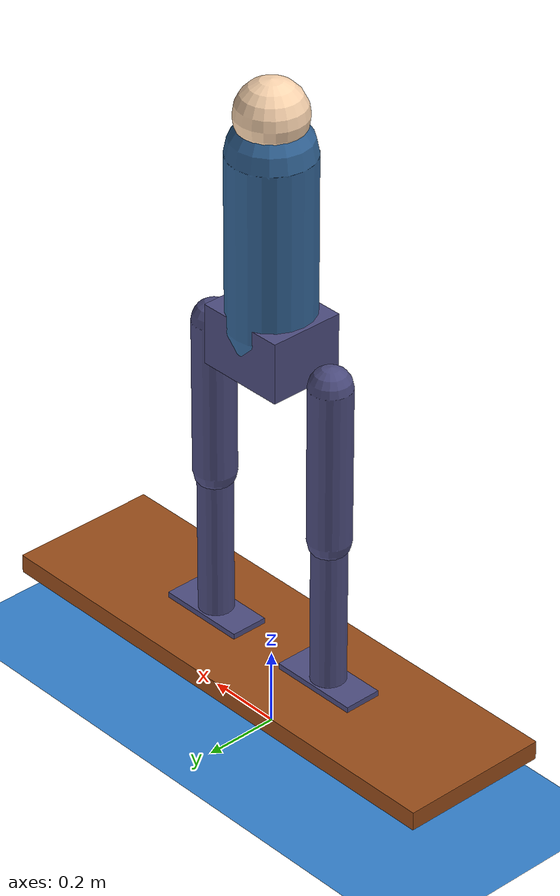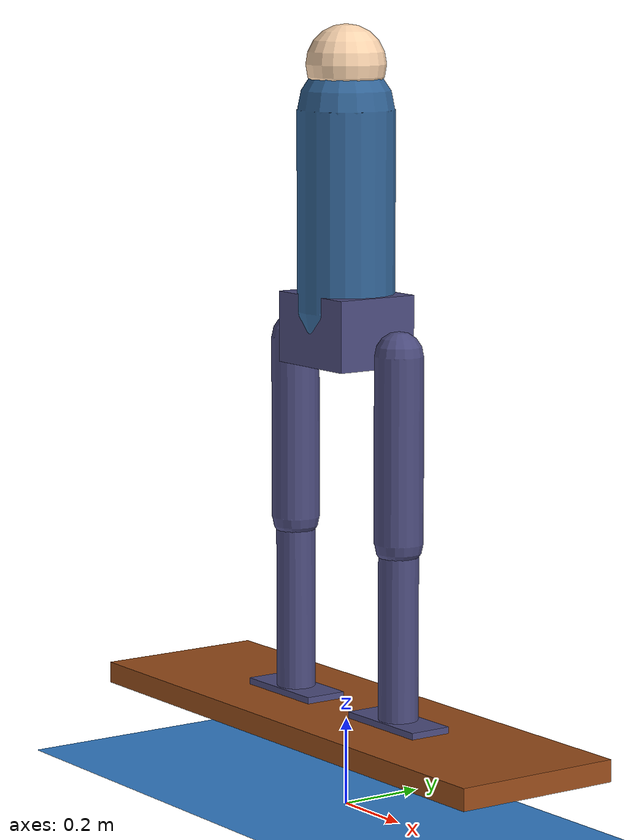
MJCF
<mujoco model="pump_foil_rider_hybrid">
  <compiler angle="radian" autolimits="true"/>

  <option timestep="0.01" gravity="0 0 -9.81" integrator="implicitfast"/>

  <default>
    <!-- No collisions - we're flying -->
    <geom contype="0" conaffinity="0"/>
    <!-- Moderate joint damping -->
    <joint damping="10" armature="0.1"/>
    <!-- Position actuators -->
    <position kp="500" kv="50"/>
  </default>

  <asset>
    <material name="board" rgba="0.6 0.3 0.1 1"/>
    <material name="skin" rgba="1.0 0.85 0.7 1"/>
    <material name="torso_mat" rgba="0.2 0.4 0.6 1"/>
    <material name="leg" rgba="0.3 0.3 0.5 1"/>
    <material name="water" rgba="0.2 0.5 0.8 0.3"/>
  </asset>

  <worldbody>
    <camera name="side" pos="0 5 1" xyaxes="-1 0 0 0 0 1" mode="trackcom"/>
    <camera name="front" pos="5 0 1" xyaxes="0 1 0 0 0 1" mode="trackcom"/>
    <camera name="quarter" pos="4 4 1.5" xyaxes="-1 1 0 0 0 1" mode="trackcom"/>

    <!-- Water surface (visual) -->
    <geom name="water" type="plane" pos="0 0 0" size="20 20 0.01" material="water"/>

    <!-- BOARD - has freejoint but we control it via qpos -->
    <!-- Board is longer in X (direction of travel), narrower in Y -->
    <body name="board" pos="0 0 0.2">
      <freejoint name="root"/>
      <geom name="board_geom" type="box" size="0.7 0.20 0.025" mass="6" material="board"/>

      <!-- RIDER - surf stance, facing sideways (+Y direction) -->
      <!-- Pelvis centered between feet -->
      <body name="pelvis" pos="0 0 0.90">
        <geom name="pelvis_geom" type="box" size="0.12 0.10 0.08" mass="12" material="leg"/>

        <!-- FRONT LEG (left) - forward on board -->
        <body name="left_thigh" pos="0.20 0 -0.04">
          <joint name="left_hip" type="hinge" axis="0 1 0" range="-0.5 1.2" damping="15"/>
          <geom name="left_thigh_geom" type="capsule" fromto="0 0 0 0 0 -0.42" size="0.055" mass="8" material="leg"/>

          <body name="left_shin" pos="0 0 -0.42">
            <joint name="left_knee" type="hinge" axis="0 1 0" range="-2.4 -0.1" damping="10"/>
            <geom name="left_shin_geom" type="capsule" fromto="0 0 0 0 0 -0.40" size="0.045" mass="4" material="leg"/>
            <geom name="left_foot" type="box" size="0.12 0.05 0.02" pos="0 0 -0.42" mass="1" material="leg"/>
          </body>
        </body>

        <!-- BACK LEG (right) - back on board -->
        <body name="right_thigh" pos="-0.20 0 -0.04">
          <joint name="right_hip" type="hinge" axis="0 1 0" range="-0.5 1.2" damping="15"/>
          <geom name="right_thigh_geom" type="capsule" fromto="0 0 0 0 0 -0.42" size="0.055" mass="8" material="leg"/>

          <body name="right_shin" pos="0 0 -0.42">
            <joint name="right_knee" type="hinge" axis="0 1 0" range="-2.4 -0.1" damping="10"/>
            <geom name="right_shin_geom" type="capsule" fromto="0 0 0 0 0 -0.40" size="0.045" mass="4" material="leg"/>
            <geom name="right_foot" type="box" size="0.12 0.05 0.02" pos="0 0 -0.42" mass="1" material="leg"/>
          </body>
        </body>

        <!-- TORSO - faces sideways -->
        <body name="torso" pos="0 0 0.04">
          <joint name="waist" type="hinge" axis="0 1 0" range="-0.4 0.4" damping="12"/>
          <geom name="torso_geom" type="capsule" fromto="0 0 0 0 0 0.45" size="0.11" mass="28" material="torso_mat"/>

          <!-- HEAD -->
          <body name="head" pos="0 0 0.55">
            <geom name="head_geom" type="sphere" size="0.09" mass="5" material="skin"/>
          </body>
        </body>
      </body>
    </body>
  </worldbody>

  <!-- Actuators for legs and waist -->
  <actuator>
    <position name="left_hip_act" joint="left_hip" kp="600" ctrlrange="-0.5 1.2"/>
    <position name="right_hip_act" joint="right_hip" kp="600" ctrlrange="-0.5 1.2"/>
    <position name="left_knee_act" joint="left_knee" kp="400" ctrlrange="-2.4 -0.1"/>
    <position name="right_knee_act" joint="right_knee" kp="400" ctrlrange="-2.4 -0.1"/>
    <position name="waist_act" joint="waist" kp="500" ctrlrange="-0.4 0.4"/>
  </actuator>

  <!-- Sensors -->
  <sensor>
    <!-- Board state -->
    <framepos name="board_pos" objtype="body" objname="board"/>
    <framequat name="board_quat" objtype="body" objname="board"/>
    <framelinvel name="board_vel" objtype="body" objname="board"/>
    <frameangvel name="board_angvel" objtype="body" objname="board"/>

    <!-- Rider center of mass (key for computing reaction forces) -->
    <subtreecom name="rider_com" body="pelvis"/>
    <subtreelinvel name="rider_vel" body="pelvis"/>

    <!-- Joint positions -->
    <jointpos name="left_hip_pos" joint="left_hip"/>
    <jointpos name="right_hip_pos" joint="right_hip"/>
    <jointpos name="left_knee_pos" joint="left_knee"/>
    <jointpos name="right_knee_pos" joint="right_knee"/>
    <jointpos name="waist_pos" joint="waist"/>

    <!-- Joint velocities -->
    <jointvel name="left_hip_vel" joint="left_hip"/>
    <jointvel name="right_hip_vel" joint="right_hip"/>
    <jointvel name="left_knee_vel" joint="left_knee"/>
    <jointvel name="right_knee_vel" joint="right_knee"/>
    <jointvel name="waist_vel" joint="waist"/>
  </sensor>
</mujoco>
